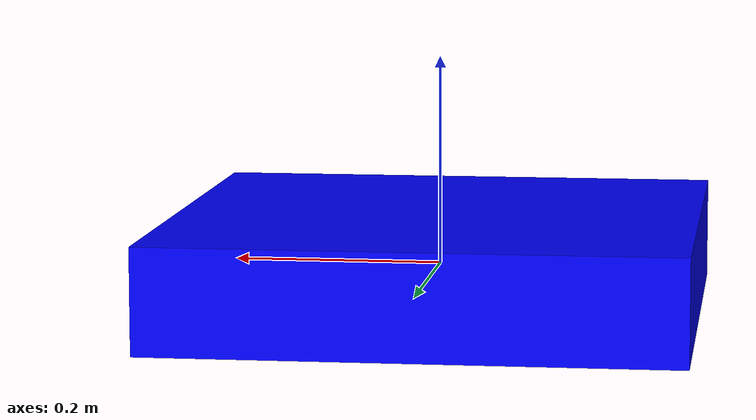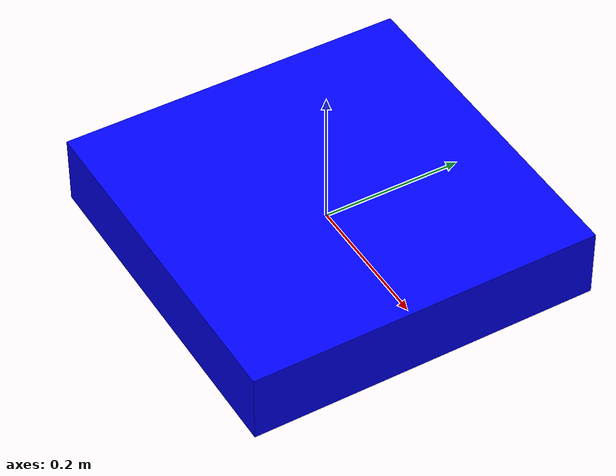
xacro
<?xml version="1.0"?>
<robot xmlns:xacro="http://ros.org/wiki/xacro" name="diff_drive_robot">
  <!-- 매크로 정의 -->
  <xacro:property name="wheel_separation" value="0.45"/>
  <xacro:property name="wheel_radius" value="0.01"/>
  <!-- 기본 링크 -->
  <link name="base_link">
    <visual>
      <geometry>
        <box size="0.5 0.5 0.1"/>
      </geometry>
      <material name="blue">
        <color rgba="0 0 1 1"/>
      </material>
    </visual>
  </link>
  <!-- 왼쪽 바퀴 -->
  <link name="wheel_left">
    <visual>
      <geometry>
        <cylinder radius="${wheel_radius}" length="0.02"/>
      </geometry>
      <material name="black">
        <color rgba="0 0 0 1"/>
      </material>
    </visual>
  </link>
  <!-- 오른쪽 바퀴 -->
  <link name="wheel_right">
    <visual>
      <geometry>
        <cylinder radius="${wheel_radius}" length="0.02"/>
      </geometry>
      <material name="black">
        <color rgba="0 0 0 1"/>
      </material>
    </visual>
  </link>
  <!-- 왼쪽 바퀴 조인트 -->
  <joint name="base_to_wheel_left" type="continuous">
    <parent link="base_link"/>
    <child link="wheel_left"/>
    <origin xyz="-${wheel_separation / 2} 0 0" rpy="0 0 0"/>
    <axis xyz="0 1 0"/>
  </joint>
  <!-- 오른쪽 바퀴 조인트 -->
  <joint name="base_to_wheel_right" type="continuous">
    <parent link="base_link"/>
    <child link="wheel_right"/>
    <origin xyz="${wheel_separation / 2} 0 0" rpy="0 0 0"/>
    <axis xyz="0 1 0"/>
  </joint>
</robot>
